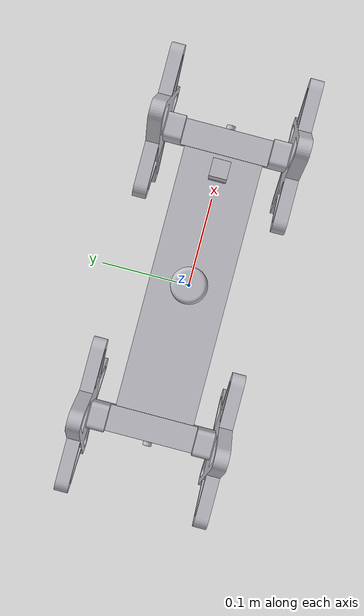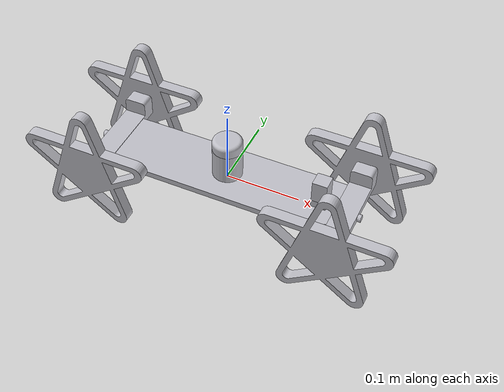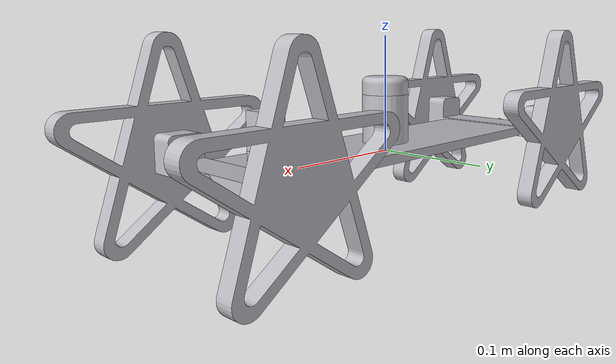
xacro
<?xml version="1.0" ?>
<robot name="pacifista" xmlns:xacro="http://www.ros.org/wiki/xacro">

<xacro:include filename="$(find pacifista_description)/urdf/materials.xacro" />
<xacro:include filename="$(find pacifista_description)/urdf/pacifista.trans" />
<xacro:include filename="$(find pacifista_description)/urdf/pacifista.gazebo" />
<link name="base_link">
  <inertial>
    <origin xyz="0.0018839019844237544 8.237494584475128e-18 0.00891071264996895" rpy="0 0 0"/>
    <mass value="2.1667793938138287"/>
    <inertia ixx="0.001458" iyy="0.014379" izz="0.015278" ixy="0.0" iyz="-0.0" ixz="-1.7e-05"/>
  </inertial>
  <visual>
    <origin xyz="0 0 0" rpy="0 0 0"/>
    <geometry>
      <mesh filename="package://pacifista_description/meshes/base_link.stl" scale="0.001 0.001 0.001"/>
    </geometry>
    <material name="silver"/>
  </visual>
  <collision>
    <origin xyz="0 0 0" rpy="0 0 0"/>
    <geometry>
      <mesh filename="package://pacifista_description/meshes/base_link.stl" scale="0.001 0.001 0.001"/>
    </geometry>
  </collision>
</link>

<link name="front_1">
  <inertial>
    <origin xyz="0.015000000000000013 0.0 0.005459472360990085" rpy="0 0 0"/>
    <mass value="0.5028932300466133"/>
    <inertia ixx="0.001245" iyy="7.2e-05" izz="0.001248" ixy="0.0" iyz="-0.0" ixz="0.0"/>
  </inertial>
  <visual>
    <origin xyz="-0.15 -0.0 -0.004" rpy="0 0 0"/>
    <geometry>
      <mesh filename="package://pacifista_description/meshes/front_1.stl" scale="0.001 0.001 0.001"/>
    </geometry>
    <material name="silver"/>
  </visual>
  <collision>
    <origin xyz="-0.15 -0.0 -0.004" rpy="0 0 0"/>
    <geometry>
      <mesh filename="package://pacifista_description/meshes/front_1.stl" scale="0.001 0.001 0.001"/>
    </geometry>
  </collision>
</link>

<link name="rear__1__1">
  <inertial>
    <origin xyz="-0.015000000000000013 0.0 0.005459472361009781" rpy="0 0 0"/>
    <mass value="0.5028932300466133"/>
    <inertia ixx="0.001245" iyy="7.2e-05" izz="0.001248" ixy="-0.0" iyz="0.0" ixz="0.0"/>
  </inertial>
  <visual>
    <origin xyz="0.15 -0.0 -0.004" rpy="0 0 0"/>
    <geometry>
      <mesh filename="package://pacifista_description/meshes/rear__1__1.stl" scale="0.001 0.001 0.001"/>
    </geometry>
    <material name="silver"/>
  </visual>
  <collision>
    <origin xyz="0.15 -0.0 -0.004" rpy="0 0 0"/>
    <geometry>
      <mesh filename="package://pacifista_description/meshes/rear__1__1.stl" scale="0.001 0.001 0.001"/>
    </geometry>
  </collision>
</link>

<link name="front_left_1">
  <inertial>
    <origin xyz="1.942890293094024e-16 0.007500000000000007 6.59735075706977e-07" rpy="0 0 0"/>
    <mass value="1.1009878458794609"/>
    <inertia ixx="0.001442" iyy="0.002842" izz="0.001442" ixy="0.0" iyz="0.0" ixz="0.0"/>
  </inertial>
  <visual>
    <origin xyz="-0.165 -0.07 -0.014" rpy="0 0 0"/>
    <geometry>
      <mesh filename="package://pacifista_description/meshes/front_left_1.stl" scale="0.001 0.001 0.001"/>
    </geometry>
    <material name="silver"/>
  </visual>
  <collision>
    <origin xyz="-0.165 -0.07 -0.014" rpy="0 0 0"/>
    <geometry>
      <mesh filename="package://pacifista_description/meshes/front_left_1.stl" scale="0.001 0.001 0.001"/>
    </geometry>
  </collision>
</link>

<link name="front_right_1">
  <inertial>
    <origin xyz="1.942890293094024e-16 -0.007499999999999979 6.59735075706977e-07" rpy="0 0 0"/>
    <mass value="1.1009878458794609"/>
    <inertia ixx="0.001442" iyy="0.002842" izz="0.001442" ixy="-0.0" iyz="0.0" ixz="0.0"/>
  </inertial>
  <visual>
    <origin xyz="-0.165 0.07 -0.014" rpy="0 0 0"/>
    <geometry>
      <mesh filename="package://pacifista_description/meshes/front_right_1.stl" scale="0.001 0.001 0.001"/>
    </geometry>
    <material name="silver"/>
  </visual>
  <collision>
    <origin xyz="-0.165 0.07 -0.014" rpy="0 0 0"/>
    <geometry>
      <mesh filename="package://pacifista_description/meshes/front_right_1.stl" scale="0.001 0.001 0.001"/>
    </geometry>
  </collision>
</link>

<link name="rear_right_1">
  <inertial>
    <origin xyz="-1.3877787807814457e-16 -0.007499999999999979 6.59735075675752e-07" rpy="0 0 0"/>
    <mass value="1.100987845879461"/>
    <inertia ixx="0.001442" iyy="0.002842" izz="0.001442" ixy="0.0" iyz="-0.0" ixz="0.0"/>
  </inertial>
  <visual>
    <origin xyz="0.165 0.07 -0.014" rpy="0 0 0"/>
    <geometry>
      <mesh filename="package://pacifista_description/meshes/rear_right_1.stl" scale="0.001 0.001 0.001"/>
    </geometry>
    <material name="silver"/>
  </visual>
  <collision>
    <origin xyz="0.165 0.07 -0.014" rpy="0 0 0"/>
    <geometry>
      <mesh filename="package://pacifista_description/meshes/rear_right_1.stl" scale="0.001 0.001 0.001"/>
    </geometry>
  </collision>
</link>

<link name="rear_left_1">
  <inertial>
    <origin xyz="-1.3877787807814457e-16 0.007500000000000007 6.597350756722825e-07" rpy="0 0 0"/>
    <mass value="1.100987845879461"/>
    <inertia ixx="0.001442" iyy="0.002842" izz="0.001442" ixy="-0.0" iyz="0.0" ixz="0.0"/>
  </inertial>
  <visual>
    <origin xyz="0.165 -0.07 -0.014" rpy="0 0 0"/>
    <geometry>
      <mesh filename="package://pacifista_description/meshes/rear_left_1.stl" scale="0.001 0.001 0.001"/>
    </geometry>
    <material name="silver"/>
  </visual>
  <collision>
    <origin xyz="0.165 -0.07 -0.014" rpy="0 0 0"/>
    <geometry>
      <mesh filename="package://pacifista_description/meshes/rear_left_1.stl" scale="0.001 0.001 0.001"/>
    </geometry>
  </collision>
</link>

<link name="lidar_1">
  <inertial>
    <origin xyz="3.901291635943797e-18 0.0 0.0072778660919538" rpy="0 0 0"/>
    <mass value="0.14297214861681104"/>
    <inertia ixx="1.6e-05" iyy="1.6e-05" izz="2.8e-05" ixy="0.0" iyz="-0.0" ixz="-0.0"/>
  </inertial>
  <visual>
    <origin xyz="-0.0 -0.0 -0.05" rpy="0 0 0"/>
    <geometry>
      <mesh filename="package://pacifista_description/meshes/lidar_1.stl" scale="0.001 0.001 0.001"/>
    </geometry>
    <material name="silver"/>
  </visual>
  <collision>
    <origin xyz="-0.0 -0.0 -0.05" rpy="0 0 0"/>
    <geometry>
      <mesh filename="package://pacifista_description/meshes/lidar_1.stl" scale="0.001 0.001 0.001"/>
    </geometry>
  </collision>
</link>

<link name="camera_1">
  <inertial>
    <origin xyz="0.0 0.0 0.01500000000000001" rpy="0 0 0"/>
    <mass value="0.09419999999999999"/>
    <inertia ixx="1e-05" iyy="1e-05" izz="6e-06" ixy="0.0" iyz="0.0" ixz="0.0"/>
  </inertial>
  <visual>
    <origin xyz="-0.13 -0.0 -0.018" rpy="0 0 0"/>
    <geometry>
      <mesh filename="package://pacifista_description/meshes/camera_1.stl" scale="0.001 0.001 0.001"/>
    </geometry>
    <material name="silver"/>
  </visual>
  <collision>
    <origin xyz="-0.13 -0.0 -0.018" rpy="0 0 0"/>
    <geometry>
      <mesh filename="package://pacifista_description/meshes/camera_1.stl" scale="0.001 0.001 0.001"/>
    </geometry>
  </collision>
</link>

<joint name="Rigid1" type="fixed">
  <origin xyz="0.15 0.0 0.004" rpy="0 0 0"/>
  <parent link="base_link"/>
  <child link="front_1"/>
</joint>

<joint name="Rigid2" type="fixed">
  <origin xyz="-0.15 0.0 0.004" rpy="0 0 0"/>
  <parent link="base_link"/>
  <child link="rear__1__1"/>
</joint>

<joint name="Rev3" type="continuous">
  <origin xyz="0.015 0.07 0.01" rpy="0 0 0"/>
  <parent link="front_1"/>
  <child link="front_left_1"/>
  <axis xyz="0.0 1.0 0.0"/>
</joint>

<joint name="Rev4" type="continuous">
  <origin xyz="0.015 -0.07 0.01" rpy="0 0 0"/>
  <parent link="front_1"/>
  <child link="front_right_1"/>
  <axis xyz="0.0 1.0 0.0"/>
</joint>

<joint name="Rev5" type="continuous">
  <origin xyz="-0.015 -0.07 0.01" rpy="0 0 0"/>
  <parent link="rear__1__1"/>
  <child link="rear_right_1"/>
  <axis xyz="0.0 1.0 0.0"/>
</joint>

<joint name="Rev6" type="continuous">
  <origin xyz="-0.015 0.07 0.01" rpy="0 0 0"/>
  <parent link="rear__1__1"/>
  <child link="rear_left_1"/>
  <axis xyz="0.0 1.0 0.0"/>
</joint>

<joint name="Rigid7" type="fixed">
  <origin xyz="0.0 0.0 0.05" rpy="0 0 0"/>
  <parent link="base_link"/>
  <child link="lidar_1"/>
</joint>

<joint name="Rigid8" type="fixed">
  <origin xyz="0.13 0.0 0.018" rpy="0 0 0"/>
  <parent link="base_link"/>
  <child link="camera_1"/>
</joint>

</robot>

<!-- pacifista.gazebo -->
<robot name="pacifista" xmlns:xacro="http://www.ros.org/wiki/xacro" >

<xacro:property name="body_color" value="Gazebo/Silver" />

<gazebo>
  <plugin name="control" filename="libgazebo_ros_control.so"/>
</gazebo>
<gazebo reference="base_link">
  <material>${body_color}</material>
  <mu1>0.2</mu1>
  <mu2>0.2</mu2>
  <selfCollide>true</selfCollide>
  <gravity>true</gravity>
</gazebo>

<gazebo reference="front_1">
  <material>${body_color}</material>
  <mu1>0.2</mu1>
  <mu2>0.2</mu2>
  <selfCollide>true</selfCollide>
</gazebo>

<gazebo reference="rear__1__1">
  <material>${body_color}</material>
  <mu1>0.2</mu1>
  <mu2>0.2</mu2>
  <selfCollide>true</selfCollide>
</gazebo>

<gazebo reference="front_left_1">
  <material>${body_color}</material>
  <mu1>1500</mu1>
  <mu2>1500</mu2>
  <selfCollide>true</selfCollide>
</gazebo>

<gazebo reference="front_right_1">
  <material>${body_color}</material>
  <mu1>1500</mu1>
  <mu2>1500</mu2>
  <selfCollide>true</selfCollide>
</gazebo>

<gazebo reference="rear_right_1">
  <material>${body_color}</material>
  <mu1>1500</mu1>
  <mu2>1500</mu2>
  <selfCollide>true</selfCollide>
</gazebo>

<gazebo reference="rear_left_1">
  <material>${body_color}</material>
  <mu1>1500</mu1>
  <mu2>1500</mu2>
  <selfCollide>true</selfCollide>
</gazebo>

<gazebo reference="lidar_1">
  <material>${body_color}</material>
  <mu1>0.2</mu1>
  <mu2>0.2</mu2>
  <selfCollide>true</selfCollide>
  <sensor type="ray" name="head_hokuyo_sensor">
      <pose>0 0 0 0 0 0</pose>
      <visualize>true</visualize>
      <update_rate>40</update_rate>
      <ray>
        <scan>
          <horizontal>
            <samples>720</samples>
            <resolution>1</resolution>
            <min_angle>-3.14159</min_angle>
            <max_angle>3.14159</max_angle>
          </horizontal>
        </scan>
        <range>
          <min>0.3</min>
          <max>12.0</max>
          <resolution>0.01</resolution>
        </range>
        <noise>
          <type>gaussian</type>
          <mean>0.0</mean>
          <stddev>0.01</stddev>
        </noise>
      </ray>
      <plugin name="gazebo_ros_head_hokuyo_controller" filename="libgazebo_ros_laser.so">
        <topicName>/scan</topicName>
        <frameName>lidar_1</frameName>
      </plugin>
    </sensor>
</gazebo>

<gazebo reference="camera_1">
  <material>${body_color}</material>
  <mu1>0.2</mu1>
  <mu2>0.2</mu2>
  <selfCollide>true</selfCollide>
  <sensor type="camera" name="camera1">
      <update_rate>30.0</update_rate>
      <camera name="head">
        <horizontal_fov>1.3962634</horizontal_fov>
        <image>
          <width>800</width>
          <height>800</height>
          <format>R8G8B8</format>
        </image>
        <clip>
          <near>0.02</near>
          <far>300</far>
        </clip>
        <noise>
          <type>gaussian</type>
          <!-- Noise is sampled independently per pixel on each frame.
               That pixel's noise value is added to each of its color
               channels, which at that point lie in the range [0,1]. -->
          <mean>0.0</mean>
          <stddev>0.007</stddev>
        </noise>
      </camera>
      <plugin name="camera_controller" filename="libgazebo_ros_camera.so">
        <alwaysOn>true</alwaysOn>
        <updateRate>0.0</updateRate>
        <cameraName>rrbot/camera1</cameraName>
        <imageTopicName>image_raw</imageTopicName>
        <cameraInfoTopicName>camera_info</cameraInfoTopicName>
        <frameName>camera_1</frameName>
        <hackBaseline>0.07</hackBaseline>
        <distortionK1>0.0</distortionK1>
        <distortionK2>0.0</distortionK2>
        <distortionK3>0.0</distortionK3>
        <distortionT1>0.0</distortionT1>
        <distortionT2>0.0</distortionT2>
      </plugin>
    </sensor>
</gazebo>

<gazebo>
  <plugin name="skid_steer_drive_controller" filename="libgazebo_ros_skid_steer_drive.so">
    <updateRate>100.0</updateRate>
    <robotNamespace>/</robotNamespace>
    <leftFrontJoint>Rev3</leftFrontJoint>
    <rightFrontJoint>Rev4</rightFrontJoint>
    <leftRearJoint>Rev6</leftRearJoint>
    <rightRearJoint>Rev5</rightRearJoint>
    <wheelSeparation>0.14</wheelSeparation>
    <wheelDiameter>0.18</wheelDiameter>
    <robotBaseFrame>base_link</robotBaseFrame>
    <torque>20</torque>
    <topicName>cmd_vel</topicName>
    <broadcastTF>true</broadcastTF>
    <!-- Topic to publish nav_msgs/Odometry messages, defaults to `odom` -->
    <odometryTopic>odom</odometryTopic>

    <!-- Odometry frame, defaults to `odom` -->
    <odometryFrame>odom</odometryFrame>
    <!-- Odometry source, 0 for ENCODER, 1 for WORLD, defaults to WORLD -->
    <odometrySource>1</odometrySource>

    <!-- Set to true to publish transforms for the odometry, defaults to true -->
    <publishOdom>true</publishOdom>

    <!-- Set to true to publish sensor_msgs/JointState on /joint_states for the wheel joints, defaults to false -->
    <publishWheelJointState>true</publishWheelJointState>
  </plugin>
</gazebo>

</robot>
